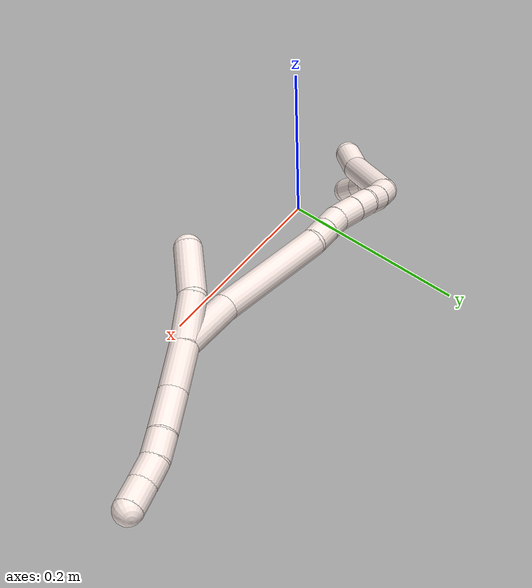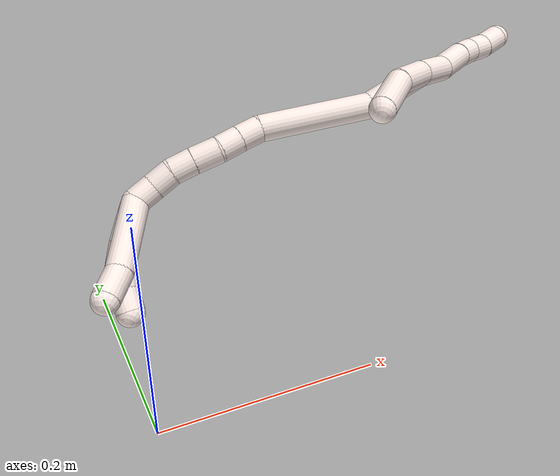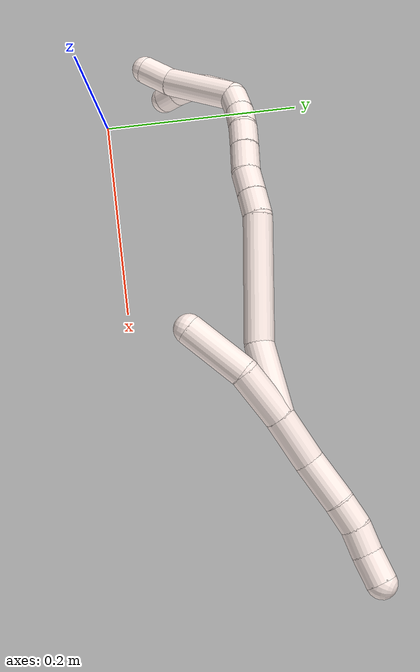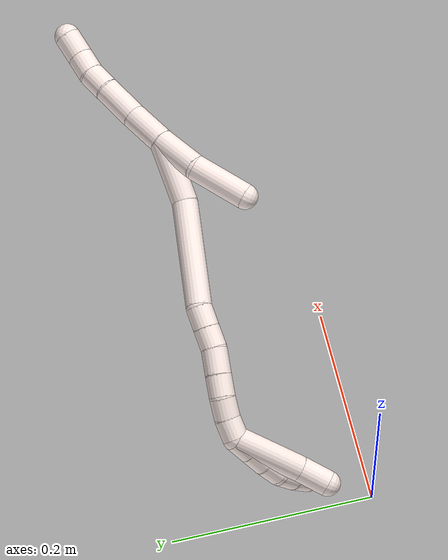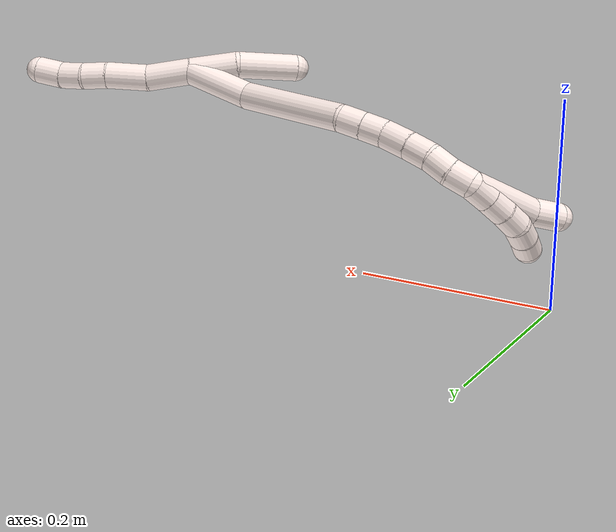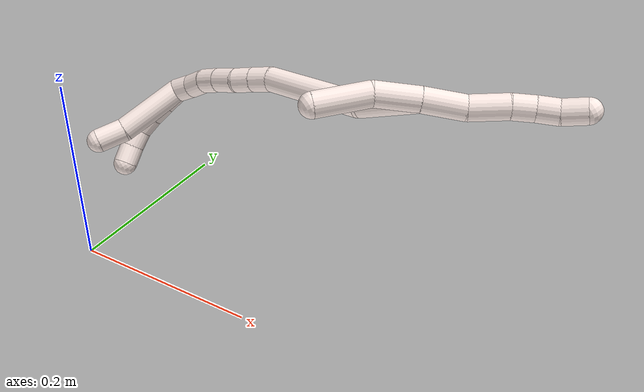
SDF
<sdf version="1.7">
 <world name="default">
  <model name="11">
   <static>0</static>
   <link name="11">
    <collision name="collision-cylinder-e_1_2_8">
     <pose>0.009247 0.010434 0.015759 -0.584821 0.454996 -0.13916</pose>
     <geometry><cylinder><radius>0.0125</radius><length>0.042081</length></cylinder></geometry>
     <surface>
      <friction><ode><mu>1.16</mu><mu2>1.16</mu2><slip1>0</slip1><slip2>0</slip2></ode></friction>
      <contact><ode><kp>1e+06</kp><kd>1</kd><max_vel>0</max_vel><min_depth>0.001</min_depth></ode></contact>
     </surface>
    </collision>
    <visual name="visual-cylinder-e_1_2_8">
     <pose>0.009247 0.010434 0.015759 -0.584821 0.454996 -0.13916</pose>
     <geometry><cylinder><radius>0.0125</radius><length>0.042081</length></cylinder></geometry>
     <material><ambient>1 0.933333 0.909804 1</ambient></material>
    </visual>
    <collision name="collision-cylinder-e_2_8_9">
     <pose>0.026944 0.026629 0.048039 -0.33557 0.449963 -0.077487</pose>
     <geometry><cylinder><radius>0.0125</radius><length>0.038861</length></cylinder></geometry>
     <surface>
      <friction><ode><mu>1.16</mu><mu2>1.16</mu2><slip1>0</slip1><slip2>0</slip2></ode></friction>
      <contact><ode><kp>1e+06</kp><kd>1</kd><max_vel>0</max_vel><min_depth>0.001</min_depth></ode></contact>
     </surface>
    </collision>
    <visual name="visual-cylinder-e_2_8_9">
     <pose>0.026944 0.026629 0.048039 -0.33557 0.449963 -0.077487</pose>
     <geometry><cylinder><radius>0.0125</radius><length>0.038861</length></cylinder></geometry>
     <material><ambient>1 0.933333 0.909804 1</ambient></material>
    </visual>
    <collision name="collision-cylinder-e_3_9_10">
     <pose>0.040659 0.036922 0.073581 -0.465379 0.480637 -0.116016</pose>
     <geometry><cylinder><radius>0.0125</radius><length>0.022772</length></cylinder></geometry>
     <surface>
      <friction><ode><mu>1.16</mu><mu2>1.16</mu2><slip1>0</slip1><slip2>0</slip2></ode></friction>
      <contact><ode><kp>1e+06</kp><kd>1</kd><max_vel>0</max_vel><min_depth>0.001</min_depth></ode></contact>
     </surface>
    </collision>
    <visual name="visual-cylinder-e_3_9_10">
     <pose>0.040659 0.036922 0.073581 -0.465379 0.480637 -0.116016</pose>
     <geometry><cylinder><radius>0.0125</radius><length>0.022772</length></cylinder></geometry>
     <material><ambient>1 0.933333 0.909804 1</ambient></material>
    </visual>
    <collision name="collision-cylinder-e_4_10_11">
     <pose>0.052807 0.04509 0.090317 -0.440652 0.679062 -0.157882</pose>
     <geometry><cylinder><radius>0.0125</radius><length>0.021918</length></cylinder></geometry>
     <surface>
      <friction><ode><mu>1.16</mu><mu2>1.16</mu2><slip1>0</slip1><slip2>0</slip2></ode></friction>
      <contact><ode><kp>1e+06</kp><kd>1</kd><max_vel>0</max_vel><min_depth>0.001</min_depth></ode></contact>
     </surface>
    </collision>
    <visual name="visual-cylinder-e_4_10_11">
     <pose>0.052807 0.04509 0.090317 -0.440652 0.679062 -0.157882</pose>
     <geometry><cylinder><radius>0.0125</radius><length>0.021918</length></cylinder></geometry>
     <material><ambient>1 0.933333 0.909804 1</ambient></material>
    </visual>
    <collision name="collision-cylinder-e_5_11_6">
     <pose>0.067023 0.050729 0.107552 -0.207194 0.645846 -0.069556</pose>
     <geometry><cylinder><radius>0.0125</radius><length>0.024367</length></cylinder></geometry>
     <surface>
      <friction><ode><mu>1.16</mu><mu2>1.16</mu2><slip1>0</slip1><slip2>0</slip2></ode></friction>
      <contact><ode><kp>1e+06</kp><kd>1</kd><max_vel>0</max_vel><min_depth>0.001</min_depth></ode></contact>
     </surface>
    </collision>
    <visual name="visual-cylinder-e_5_11_6">
     <pose>0.067023 0.050729 0.107552 -0.207194 0.645846 -0.069556</pose>
     <geometry><cylinder><radius>0.0125</radius><length>0.024367</length></cylinder></geometry>
     <material><ambient>1 0.933333 0.909804 1</ambient></material>
    </visual>
    <collision name="collision-cylinder-e_1_2_12">
     <pose>-0.00829 -0.010523 -0.017654 2.60408 -0.383376 -1.22766</pose>
     <geometry><cylinder><radius>0.0125</radius><length>0.044323</length></cylinder></geometry>
     <surface>
      <friction><ode><mu>1.16</mu><mu2>1.16</mu2><slip1>0</slip1><slip2>0</slip2></ode></friction>
      <contact><ode><kp>1e+06</kp><kd>1</kd><max_vel>0</max_vel><min_depth>0.001</min_depth></ode></contact>
     </surface>
    </collision>
    <visual name="visual-cylinder-e_1_2_12">
     <pose>-0.00829 -0.010523 -0.017654 2.60408 -0.383376 -1.22766</pose>
     <geometry><cylinder><radius>0.0125</radius><length>0.044323</length></cylinder></geometry>
     <material><ambient>1 0.933333 0.909804 1</ambient></material>
    </visual>
    <collision name="collision-cylinder-e_2_12_5">
     <pose>-0.02175 -0.028715 -0.061566 2.85742 -0.186831 -1.15968</pose>
     <geometry><cylinder><radius>0.0125</radius><length>0.055677</length></cylinder></geometry>
     <surface>
      <friction><ode><mu>1.16</mu><mu2>1.16</mu2><slip1>0</slip1><slip2>0</slip2></ode></friction>
      <contact><ode><kp>1e+06</kp><kd>1</kd><max_vel>0</max_vel><min_depth>0.001</min_depth></ode></contact>
     </surface>
    </collision>
    <visual name="visual-cylinder-e_2_12_5">
     <pose>-0.02175 -0.028715 -0.061566 2.85742 -0.186831 -1.15968</pose>
     <geometry><cylinder><radius>0.0125</radius><length>0.055677</length></cylinder></geometry>
     <material><ambient>1 0.933333 0.909804 1</ambient></material>
    </visual>
    <collision name="collision-cylinder-e_1_2_13">
     <pose>-0.022886 -7.9e-05 -0.021314 3.13788 -0.820952 -3.13306</pose>
     <geometry><cylinder><radius>0.0125</radius><length>0.062549</length></cylinder></geometry>
     <surface>
      <friction><ode><mu>1.16</mu><mu2>1.16</mu2><slip1>0</slip1><slip2>0</slip2></ode></friction>
      <contact><ode><kp>1e+06</kp><kd>1</kd><max_vel>0</max_vel><min_depth>0.001</min_depth></ode></contact>
     </surface>
    </collision>
    <visual name="visual-cylinder-e_1_2_13">
     <pose>-0.022886 -7.9e-05 -0.021314 3.13788 -0.820952 -3.13306</pose>
     <geometry><cylinder><radius>0.0125</radius><length>0.062549</length></cylinder></geometry>
     <material><ambient>1 0.933333 0.909804 1</ambient></material>
    </visual>
    <collision name="collision-cylinder-e_2_13_14">
     <pose>-0.093318 -0.009942 -0.066225 2.74853 -1.07778 -2.4987</pose>
     <geometry><cylinder><radius>0.0125</radius><length>0.107945</length></cylinder></geometry>
     <surface>
      <friction><ode><mu>1.16</mu><mu2>1.16</mu2><slip1>0</slip1><slip2>0</slip2></ode></friction>
      <contact><ode><kp>1e+06</kp><kd>1</kd><max_vel>0</max_vel><min_depth>0.001</min_depth></ode></contact>
     </surface>
    </collision>
    <visual name="visual-cylinder-e_2_13_14">
     <pose>-0.093318 -0.009942 -0.066225 2.74853 -1.07778 -2.4987</pose>
     <geometry><cylinder><radius>0.0125</radius><length>0.107945</length></cylinder></geometry>
     <material><ambient>1 0.933333 0.909804 1</ambient></material>
    </visual>
    <collision name="collision-cylinder-e_3_14_15">
     <pose>-0.148953 -0.020488 -0.096843 3.03351 -0.853143 -2.90465</pose>
     <geometry><cylinder><radius>0.0125</radius><length>0.021478</length></cylinder></geometry>
     <surface>
      <friction><ode><mu>1.16</mu><mu2>1.16</mu2><slip1>0</slip1><slip2>0</slip2></ode></friction>
      <contact><ode><kp>1e+06</kp><kd>1</kd><max_vel>0</max_vel><min_depth>0.001</min_depth></ode></contact>
     </surface>
    </collision>
    <visual name="visual-cylinder-e_3_14_15">
     <pose>-0.148953 -0.020488 -0.096843 3.03351 -0.853143 -2.90465</pose>
     <geometry><cylinder><radius>0.0125</radius><length>0.021478</length></cylinder></geometry>
     <material><ambient>1 0.933333 0.909804 1</ambient></material>
    </visual>
    <collision name="collision-cylinder-e_4_15_16">
     <pose>-0.164718 -0.021816 -0.110736 3.05948 -0.838742 -2.95782</pose>
     <geometry><cylinder><radius>0.0125</radius><length>0.020634</length></cylinder></geometry>
     <surface>
      <friction><ode><mu>1.16</mu><mu2>1.16</mu2><slip1>0</slip1><slip2>0</slip2></ode></friction>
      <contact><ode><kp>1e+06</kp><kd>1</kd><max_vel>0</max_vel><min_depth>0.001</min_depth></ode></contact>
     </surface>
    </collision>
    <visual name="visual-cylinder-e_4_15_16">
     <pose>-0.164718 -0.021816 -0.110736 3.05948 -0.838742 -2.95782</pose>
     <geometry><cylinder><radius>0.0125</radius><length>0.020634</length></cylinder></geometry>
     <material><ambient>1 0.933333 0.909804 1</ambient></material>
    </visual>
    <collision name="collision-cylinder-e_5_16_17">
     <pose>-0.183097 -0.022207 -0.124159 -3.11498 -1.02157 3.0941</pose>
     <geometry><cylinder><radius>0.0125</radius><length>0.025103</length></cylinder></geometry>
     <surface>
      <friction><ode><mu>1.16</mu><mu2>1.16</mu2><slip1>0</slip1><slip2>0</slip2></ode></friction>
      <contact><ode><kp>1e+06</kp><kd>1</kd><max_vel>0</max_vel><min_depth>0.001</min_depth></ode></contact>
     </surface>
    </collision>
    <visual name="visual-cylinder-e_5_16_17">
     <pose>-0.183097 -0.022207 -0.124159 -3.11498 -1.02157 3.0941</pose>
     <geometry><cylinder><radius>0.0125</radius><length>0.025103</length></cylinder></geometry>
     <material><ambient>1 0.933333 0.909804 1</ambient></material>
    </visual>
    <collision name="collision-cylinder-e_6_17_18">
     <pose>-0.202741 -0.021399 -0.136582 -3.03401 -0.986747 2.942</pose>
     <geometry><cylinder><radius>0.0125</radius><length>0.021427</length></cylinder></geometry>
     <surface>
      <friction><ode><mu>1.16</mu><mu2>1.16</mu2><slip1>0</slip1><slip2>0</slip2></ode></friction>
      <contact><ode><kp>1e+06</kp><kd>1</kd><max_vel>0</max_vel><min_depth>0.001</min_depth></ode></contact>
     </surface>
    </collision>
    <visual name="visual-cylinder-e_6_17_18">
     <pose>-0.202741 -0.021399 -0.136582 -3.03401 -0.986747 2.942</pose>
     <geometry><cylinder><radius>0.0125</radius><length>0.021427</length></cylinder></geometry>
     <material><ambient>1 0.933333 0.909804 1</ambient></material>
    </visual>
    <collision name="collision-cylinder-e_7_18_19">
     <pose>-0.219264 -0.018351 -0.148931 -2.78493 -0.831977 2.36681</pose>
     <geometry><cylinder><radius>0.0125</radius><length>0.020524</length></cylinder></geometry>
     <surface>
      <friction><ode><mu>1.16</mu><mu2>1.16</mu2><slip1>0</slip1><slip2>0</slip2></ode></friction>
      <contact><ode><kp>1e+06</kp><kd>1</kd><max_vel>0</max_vel><min_depth>0.001</min_depth></ode></contact>
     </surface>
    </collision>
    <visual name="visual-cylinder-e_7_18_19">
     <pose>-0.219264 -0.018351 -0.148931 -2.78493 -0.831977 2.36681</pose>
     <geometry><cylinder><radius>0.0125</radius><length>0.020524</length></cylinder></geometry>
     <material><ambient>1 0.933333 0.909804 1</ambient></material>
    </visual>
    <collision name="collision-cylinder-e_8_19_1">
     <pose>-0.233643 -0.014669 -0.162868 -2.973 -0.731361 2.70721</pose>
     <geometry><cylinder><radius>0.0125</radius><length>0.020339</length></cylinder></geometry>
     <surface>
      <friction><ode><mu>1.16</mu><mu2>1.16</mu2><slip1>0</slip1><slip2>0</slip2></ode></friction>
      <contact><ode><kp>1e+06</kp><kd>1</kd><max_vel>0</max_vel><min_depth>0.001</min_depth></ode></contact>
     </surface>
    </collision>
    <visual name="visual-cylinder-e_8_19_1">
     <pose>-0.233643 -0.014669 -0.162868 -2.973 -0.731361 2.70721</pose>
     <geometry><cylinder><radius>0.0125</radius><length>0.020339</length></cylinder></geometry>
     <material><ambient>1 0.933333 0.909804 1</ambient></material>
    </visual>
    <collision name="collision-cylinder-e_1_1_20">
     <pose>-0.241893 -0.010156 -0.179677 -2.80768 -0.146347 0.820584</pose>
     <geometry><cylinder><radius>0.0125</radius><length>0.02</length></cylinder></geometry>
     <surface>
      <friction><ode><mu>1.16</mu><mu2>1.16</mu2><slip1>0</slip1><slip2>0</slip2></ode></friction>
      <contact><ode><kp>1e+06</kp><kd>1</kd><max_vel>0</max_vel><min_depth>0.001</min_depth></ode></contact>
     </surface>
    </collision>
    <visual name="visual-cylinder-e_1_1_20">
     <pose>-0.241893 -0.010156 -0.179677 -2.80768 -0.146347 0.820584</pose>
     <geometry><cylinder><radius>0.0125</radius><length>0.02</length></cylinder></geometry>
     <material><ambient>1 0.933333 0.909804 1</ambient></material>
    </visual>
    <collision name="collision-cylinder-e_2_20_21">
     <pose>-0.24466 -0.003415 -0.198299 -2.78087 -0.13123 0.691749</pose>
     <geometry><cylinder><radius>0.0125</radius><length>0.02</length></cylinder></geometry>
     <surface>
      <friction><ode><mu>1.16</mu><mu2>1.16</mu2><slip1>0</slip1><slip2>0</slip2></ode></friction>
      <contact><ode><kp>1e+06</kp><kd>1</kd><max_vel>0</max_vel><min_depth>0.001</min_depth></ode></contact>
     </surface>
    </collision>
    <visual name="visual-cylinder-e_2_20_21">
     <pose>-0.24466 -0.003415 -0.198299 -2.78087 -0.13123 0.691749</pose>
     <geometry><cylinder><radius>0.0125</radius><length>0.02</length></cylinder></geometry>
     <material><ambient>1 0.933333 0.909804 1</ambient></material>
    </visual>
    <collision name="collision-cylinder-e_3_21_22">
     <pose>-0.246365 0.003974 -0.216779 -2.74171 -0.039669 0.195159</pose>
     <geometry><cylinder><radius>0.0125</radius><length>0.02</length></cylinder></geometry>
     <surface>
      <friction><ode><mu>1.16</mu><mu2>1.16</mu2><slip1>0</slip1><slip2>0</slip2></ode></friction>
      <contact><ode><kp>1e+06</kp><kd>1</kd><max_vel>0</max_vel><min_depth>0.001</min_depth></ode></contact>
     </surface>
    </collision>
    <visual name="visual-cylinder-e_3_21_22">
     <pose>-0.246365 0.003974 -0.216779 -2.74171 -0.039669 0.195159</pose>
     <geometry><cylinder><radius>0.0125</radius><length>0.02</length></cylinder></geometry>
     <material><ambient>1 0.933333 0.909804 1</ambient></material>
    </visual>
    <collision name="collision-cylinder-e_4_22_23">
     <pose>-0.244343 0.012971 -0.234233 -2.58737 0.244311 -0.814936</pose>
     <geometry><cylinder><radius>0.0125</radius><length>0.02</length></cylinder></geometry>
     <surface>
      <friction><ode><mu>1.16</mu><mu2>1.16</mu2><slip1>0</slip1><slip2>0</slip2></ode></friction>
      <contact><ode><kp>1e+06</kp><kd>1</kd><max_vel>0</max_vel><min_depth>0.001</min_depth></ode></contact>
     </surface>
    </collision>
    <visual name="visual-cylinder-e_4_22_23">
     <pose>-0.244343 0.012971 -0.234233 -2.58737 0.244311 -0.814936</pose>
     <geometry><cylinder><radius>0.0125</radius><length>0.02</length></cylinder></geometry>
     <material><ambient>1 0.933333 0.909804 1</ambient></material>
    </visual>
    <collision name="collision-cylinder-e_5_23_4">
     <pose>-0.238319 0.023177 -0.250294 -2.56312 0.368723 -1.11957</pose>
     <geometry><cylinder><radius>0.0125</radius><length>0.02</length></cylinder></geometry>
     <surface>
      <friction><ode><mu>1.16</mu><mu2>1.16</mu2><slip1>0</slip1><slip2>0</slip2></ode></friction>
      <contact><ode><kp>1e+06</kp><kd>1</kd><max_vel>0</max_vel><min_depth>0.001</min_depth></ode></contact>
     </surface>
    </collision>
    <visual name="visual-cylinder-e_5_23_4">
     <pose>-0.238319 0.023177 -0.250294 -2.56312 0.368723 -1.11957</pose>
     <geometry><cylinder><radius>0.0125</radius><length>0.02</length></cylinder></geometry>
     <material><ambient>1 0.933333 0.909804 1</ambient></material>
    </visual>
    <collision name="collision-cylinder-e_1_1_24">
     <pose>-0.239402 -0.009224 -0.205309 -3.02282 0.029308 -0.48331</pose>
     <geometry><cylinder><radius>0.0125</radius><length>0.070486</length></cylinder></geometry>
     <surface>
      <friction><ode><mu>1.16</mu><mu2>1.16</mu2><slip1>0</slip1><slip2>0</slip2></ode></friction>
      <contact><ode><kp>1e+06</kp><kd>1</kd><max_vel>0</max_vel><min_depth>0.001</min_depth></ode></contact>
     </surface>
    </collision>
    <visual name="visual-cylinder-e_1_1_24">
     <pose>-0.239402 -0.009224 -0.205309 -3.02282 0.029308 -0.48331</pose>
     <geometry><cylinder><radius>0.0125</radius><length>0.070486</length></cylinder></geometry>
     <material><ambient>1 0.933333 0.909804 1</ambient></material>
    </visual>
    <collision name="collision-cylinder-e_2_24_3">
     <pose>-0.239509 -0.006299 -0.254949 3.05659 -0.077308 -1.47599</pose>
     <geometry><cylinder><radius>0.0125</radius><length>0.029514</length></cylinder></geometry>
     <surface>
      <friction><ode><mu>1.16</mu><mu2>1.16</mu2><slip1>0</slip1><slip2>0</slip2></ode></friction>
      <contact><ode><kp>1e+06</kp><kd>1</kd><max_vel>0</max_vel><min_depth>0.001</min_depth></ode></contact>
     </surface>
    </collision>
    <visual name="visual-cylinder-e_2_24_3">
     <pose>-0.239509 -0.006299 -0.254949 3.05659 -0.077308 -1.47599</pose>
     <geometry><cylinder><radius>0.0125</radius><length>0.029514</length></cylinder></geometry>
     <material><ambient>1 0.933333 0.909804 1</ambient></material>
    </visual>
    <collision name="collision-sphere-3">
     <pose>-0.240649 -0.007548 -0.269609 0 -0 0</pose>
     <geometry><sphere><radius>0.0125</radius></sphere></geometry>
     <surface>
      <friction><ode><mu>1.16</mu><mu2>1.16</mu2><slip1>0</slip1><slip2>0</slip2></ode></friction>
      <contact><ode><kp>1e+06</kp><kd>1</kd><max_vel>0</max_vel><min_depth>0.001</min_depth></ode></contact>
     </surface>
    </collision>
    <visual name="visual-sphere-3">
     <pose>-0.240649 -0.007548 -0.269609 0 -0 0</pose>
     <geometry><sphere><radius>0.0125</radius></sphere></geometry>
     <material><ambient>1 0.933333 0.909804 1</ambient></material>
    </visual>
    <collision name="collision-sphere-24">
     <pose>-0.238369 -0.00505 -0.240289 0 -0 0</pose>
     <geometry><sphere><radius>0.0125</radius></sphere></geometry>
     <surface>
      <friction><ode><mu>1.16</mu><mu2>1.16</mu2><slip1>0</slip1><slip2>0</slip2></ode></friction>
      <contact><ode><kp>1e+06</kp><kd>1</kd><max_vel>0</max_vel><min_depth>0.001</min_depth></ode></contact>
     </surface>
    </collision>
    <visual name="visual-sphere-24">
     <pose>-0.238369 -0.00505 -0.240289 0 -0 0</pose>
     <geometry><sphere><radius>0.0125</radius></sphere></geometry>
     <material><ambient>1 0.933333 0.909804 1</ambient></material>
    </visual>
    <collision name="collision-sphere-4">
     <pose>-0.234715 0.028277 -0.258104 0 -0 0</pose>
     <geometry><sphere><radius>0.0125</radius></sphere></geometry>
     <surface>
      <friction><ode><mu>1.16</mu><mu2>1.16</mu2><slip1>0</slip1><slip2>0</slip2></ode></friction>
      <contact><ode><kp>1e+06</kp><kd>1</kd><max_vel>0</max_vel><min_depth>0.001</min_depth></ode></contact>
     </surface>
    </collision>
    <visual name="visual-sphere-4">
     <pose>-0.234715 0.028277 -0.258104 0 -0 0</pose>
     <geometry><sphere><radius>0.0125</radius></sphere></geometry>
     <material><ambient>1 0.933333 0.909804 1</ambient></material>
    </visual>
    <collision name="collision-sphere-23">
     <pose>-0.241924 0.018077 -0.242484 0 -0 0</pose>
     <geometry><sphere><radius>0.0125</radius></sphere></geometry>
     <surface>
      <friction><ode><mu>1.16</mu><mu2>1.16</mu2><slip1>0</slip1><slip2>0</slip2></ode></friction>
      <contact><ode><kp>1e+06</kp><kd>1</kd><max_vel>0</max_vel><min_depth>0.001</min_depth></ode></contact>
     </surface>
    </collision>
    <visual name="visual-sphere-23">
     <pose>-0.241924 0.018077 -0.242484 0 -0 0</pose>
     <geometry><sphere><radius>0.0125</radius></sphere></geometry>
     <material><ambient>1 0.933333 0.909804 1</ambient></material>
    </visual>
    <collision name="collision-sphere-22">
     <pose>-0.246761 0.007864 -0.225983 0 -0 0</pose>
     <geometry><sphere><radius>0.0125</radius></sphere></geometry>
     <surface>
      <friction><ode><mu>1.16</mu><mu2>1.16</mu2><slip1>0</slip1><slip2>0</slip2></ode></friction>
      <contact><ode><kp>1e+06</kp><kd>1</kd><max_vel>0</max_vel><min_depth>0.001</min_depth></ode></contact>
     </surface>
    </collision>
    <visual name="visual-sphere-22">
     <pose>-0.246761 0.007864 -0.225983 0 -0 0</pose>
     <geometry><sphere><radius>0.0125</radius></sphere></geometry>
     <material><ambient>1 0.933333 0.909804 1</ambient></material>
    </visual>
    <collision name="collision-sphere-21">
     <pose>-0.245968 8.4e-05 -0.207575 0 -0 0</pose>
     <geometry><sphere><radius>0.0125</radius></sphere></geometry>
     <surface>
      <friction><ode><mu>1.16</mu><mu2>1.16</mu2><slip1>0</slip1><slip2>0</slip2></ode></friction>
      <contact><ode><kp>1e+06</kp><kd>1</kd><max_vel>0</max_vel><min_depth>0.001</min_depth></ode></contact>
     </surface>
    </collision>
    <visual name="visual-sphere-21">
     <pose>-0.245968 8.4e-05 -0.207575 0 -0 0</pose>
     <geometry><sphere><radius>0.0125</radius></sphere></geometry>
     <material><ambient>1 0.933333 0.909804 1</ambient></material>
    </visual>
    <collision name="collision-sphere-20">
     <pose>-0.243351 -0.006914 -0.189023 0 -0 0</pose>
     <geometry><sphere><radius>0.0125</radius></sphere></geometry>
     <surface>
      <friction><ode><mu>1.16</mu><mu2>1.16</mu2><slip1>0</slip1><slip2>0</slip2></ode></friction>
      <contact><ode><kp>1e+06</kp><kd>1</kd><max_vel>0</max_vel><min_depth>0.001</min_depth></ode></contact>
     </surface>
    </collision>
    <visual name="visual-sphere-20">
     <pose>-0.243351 -0.006914 -0.189023 0 -0 0</pose>
     <geometry><sphere><radius>0.0125</radius></sphere></geometry>
     <material><ambient>1 0.933333 0.909804 1</ambient></material>
    </visual>
    <collision name="collision-sphere-6">
     <pose>0.074356 0.05273 0.117074 0 -0 0</pose>
     <geometry><sphere><radius>0.0125</radius></sphere></geometry>
     <surface>
      <friction><ode><mu>1.16</mu><mu2>1.16</mu2><slip1>0</slip1><slip2>0</slip2></ode></friction>
      <contact><ode><kp>1e+06</kp><kd>1</kd><max_vel>0</max_vel><min_depth>0.001</min_depth></ode></contact>
     </surface>
    </collision>
    <visual name="visual-sphere-6">
     <pose>0.074356 0.05273 0.117074 0 -0 0</pose>
     <geometry><sphere><radius>0.0125</radius></sphere></geometry>
     <material><ambient>1 0.933333 0.909804 1</ambient></material>
    </visual>
    <collision name="collision-sphere-11">
     <pose>0.059689 0.048727 0.09803 0 -0 0</pose>
     <geometry><sphere><radius>0.0125</radius></sphere></geometry>
     <surface>
      <friction><ode><mu>1.16</mu><mu2>1.16</mu2><slip1>0</slip1><slip2>0</slip2></ode></friction>
      <contact><ode><kp>1e+06</kp><kd>1</kd><max_vel>0</max_vel><min_depth>0.001</min_depth></ode></contact>
     </surface>
    </collision>
    <visual name="visual-sphere-11">
     <pose>0.059689 0.048727 0.09803 0 -0 0</pose>
     <geometry><sphere><radius>0.0125</radius></sphere></geometry>
     <material><ambient>1 0.933333 0.909804 1</ambient></material>
    </visual>
    <collision name="collision-sphere-10">
     <pose>0.045924 0.041452 0.082604 0 -0 0</pose>
     <geometry><sphere><radius>0.0125</radius></sphere></geometry>
     <surface>
      <friction><ode><mu>1.16</mu><mu2>1.16</mu2><slip1>0</slip1><slip2>0</slip2></ode></friction>
      <contact><ode><kp>1e+06</kp><kd>1</kd><max_vel>0</max_vel><min_depth>0.001</min_depth></ode></contact>
     </surface>
    </collision>
    <visual name="visual-sphere-10">
     <pose>0.045924 0.041452 0.082604 0 -0 0</pose>
     <geometry><sphere><radius>0.0125</radius></sphere></geometry>
     <material><ambient>1 0.933333 0.909804 1</ambient></material>
    </visual>
    <collision name="collision-sphere-9">
     <pose>0.035395 0.032391 0.064559 0 -0 0</pose>
     <geometry><sphere><radius>0.0125</radius></sphere></geometry>
     <surface>
      <friction><ode><mu>1.16</mu><mu2>1.16</mu2><slip1>0</slip1><slip2>0</slip2></ode></friction>
      <contact><ode><kp>1e+06</kp><kd>1</kd><max_vel>0</max_vel><min_depth>0.001</min_depth></ode></contact>
     </surface>
    </collision>
    <visual name="visual-sphere-9">
     <pose>0.035395 0.032391 0.064559 0 -0 0</pose>
     <geometry><sphere><radius>0.0125</radius></sphere></geometry>
     <material><ambient>1 0.933333 0.909804 1</ambient></material>
    </visual>
    <collision name="collision-sphere-2">
     <geometry><sphere><radius>0.0125</radius></sphere></geometry>
     <surface>
      <friction><ode><mu>1.16</mu><mu2>1.16</mu2><slip1>0</slip1><slip2>0</slip2></ode></friction>
      <contact><ode><kp>1e+06</kp><kd>1</kd><max_vel>0</max_vel><min_depth>0.001</min_depth></ode></contact>
     </surface>
    </collision>
    <visual name="visual-sphere-2">
     <geometry><sphere><radius>0.0125</radius></sphere></geometry>
     <material><ambient>1 0.933333 0.909804 1</ambient></material>
    </visual>
    <collision name="collision-sphere-19">
     <pose>-0.226851 -0.015939 -0.155407 0 -0 0</pose>
     <geometry><sphere><radius>0.0125</radius></sphere></geometry>
     <surface>
      <friction><ode><mu>1.16</mu><mu2>1.16</mu2><slip1>0</slip1><slip2>0</slip2></ode></friction>
      <contact><ode><kp>1e+06</kp><kd>1</kd><max_vel>0</max_vel><min_depth>0.001</min_depth></ode></contact>
     </surface>
    </collision>
    <visual name="visual-sphere-19">
     <pose>-0.226851 -0.015939 -0.155407 0 -0 0</pose>
     <geometry><sphere><radius>0.0125</radius></sphere></geometry>
     <material><ambient>1 0.933333 0.909804 1</ambient></material>
    </visual>
    <collision name="collision-sphere-8">
     <pose>0.018493 0.020868 0.031518 0 -0 0</pose>
     <geometry><sphere><radius>0.0125</radius></sphere></geometry>
     <surface>
      <friction><ode><mu>1.16</mu><mu2>1.16</mu2><slip1>0</slip1><slip2>0</slip2></ode></friction>
      <contact><ode><kp>1e+06</kp><kd>1</kd><max_vel>0</max_vel><min_depth>0.001</min_depth></ode></contact>
     </surface>
    </collision>
    <visual name="visual-sphere-8">
     <pose>0.018493 0.020868 0.031518 0 -0 0</pose>
     <geometry><sphere><radius>0.0125</radius></sphere></geometry>
     <material><ambient>1 0.933333 0.909804 1</ambient></material>
    </visual>
    <collision name="collision-sphere-12">
     <pose>-0.016579 -0.021046 -0.035309 0 -0 0</pose>
     <geometry><sphere><radius>0.0125</radius></sphere></geometry>
     <surface>
      <friction><ode><mu>1.16</mu><mu2>1.16</mu2><slip1>0</slip1><slip2>0</slip2></ode></friction>
      <contact><ode><kp>1e+06</kp><kd>1</kd><max_vel>0</max_vel><min_depth>0.001</min_depth></ode></contact>
     </surface>
    </collision>
    <visual name="visual-sphere-12">
     <pose>-0.016579 -0.021046 -0.035309 0 -0 0</pose>
     <geometry><sphere><radius>0.0125</radius></sphere></geometry>
     <material><ambient>1 0.933333 0.909804 1</ambient></material>
    </visual>
    <collision name="collision-sphere-5">
     <pose>-0.026921 -0.036384 -0.087823 0 -0 0</pose>
     <geometry><sphere><radius>0.0125</radius></sphere></geometry>
     <surface>
      <friction><ode><mu>1.16</mu><mu2>1.16</mu2><slip1>0</slip1><slip2>0</slip2></ode></friction>
      <contact><ode><kp>1e+06</kp><kd>1</kd><max_vel>0</max_vel><min_depth>0.001</min_depth></ode></contact>
     </surface>
    </collision>
    <visual name="visual-sphere-5">
     <pose>-0.026921 -0.036384 -0.087823 0 -0 0</pose>
     <geometry><sphere><radius>0.0125</radius></sphere></geometry>
     <material><ambient>1 0.933333 0.909804 1</ambient></material>
    </visual>
    <collision name="collision-sphere-13">
     <pose>-0.045773 -0.000158 -0.042628 0 -0 0</pose>
     <geometry><sphere><radius>0.0125</radius></sphere></geometry>
     <surface>
      <friction><ode><mu>1.16</mu><mu2>1.16</mu2><slip1>0</slip1><slip2>0</slip2></ode></friction>
      <contact><ode><kp>1e+06</kp><kd>1</kd><max_vel>0</max_vel><min_depth>0.001</min_depth></ode></contact>
     </surface>
    </collision>
    <visual name="visual-sphere-13">
     <pose>-0.045773 -0.000158 -0.042628 0 -0 0</pose>
     <geometry><sphere><radius>0.0125</radius></sphere></geometry>
     <material><ambient>1 0.933333 0.909804 1</ambient></material>
    </visual>
    <collision name="collision-sphere-14">
     <pose>-0.140863 -0.019727 -0.089821 0 -0 0</pose>
     <geometry><sphere><radius>0.0125</radius></sphere></geometry>
     <surface>
      <friction><ode><mu>1.16</mu><mu2>1.16</mu2><slip1>0</slip1><slip2>0</slip2></ode></friction>
      <contact><ode><kp>1e+06</kp><kd>1</kd><max_vel>0</max_vel><min_depth>0.001</min_depth></ode></contact>
     </surface>
    </collision>
    <visual name="visual-sphere-14">
     <pose>-0.140863 -0.019727 -0.089821 0 -0 0</pose>
     <geometry><sphere><radius>0.0125</radius></sphere></geometry>
     <material><ambient>1 0.933333 0.909804 1</ambient></material>
    </visual>
    <collision name="collision-sphere-15">
     <pose>-0.157044 -0.02125 -0.103864 0 -0 0</pose>
     <geometry><sphere><radius>0.0125</radius></sphere></geometry>
     <surface>
      <friction><ode><mu>1.16</mu><mu2>1.16</mu2><slip1>0</slip1><slip2>0</slip2></ode></friction>
      <contact><ode><kp>1e+06</kp><kd>1</kd><max_vel>0</max_vel><min_depth>0.001</min_depth></ode></contact>
     </surface>
    </collision>
    <visual name="visual-sphere-15">
     <pose>-0.157044 -0.02125 -0.103864 0 -0 0</pose>
     <geometry><sphere><radius>0.0125</radius></sphere></geometry>
     <material><ambient>1 0.933333 0.909804 1</ambient></material>
    </visual>
    <collision name="collision-sphere-16">
     <pose>-0.172392 -0.022382 -0.117609 0 -0 0</pose>
     <geometry><sphere><radius>0.0125</radius></sphere></geometry>
     <surface>
      <friction><ode><mu>1.16</mu><mu2>1.16</mu2><slip1>0</slip1><slip2>0</slip2></ode></friction>
      <contact><ode><kp>1e+06</kp><kd>1</kd><max_vel>0</max_vel><min_depth>0.001</min_depth></ode></contact>
     </surface>
    </collision>
    <visual name="visual-sphere-16">
     <pose>-0.172392 -0.022382 -0.117609 0 -0 0</pose>
     <geometry><sphere><radius>0.0125</radius></sphere></geometry>
     <material><ambient>1 0.933333 0.909804 1</ambient></material>
    </visual>
    <collision name="collision-sphere-17">
     <pose>-0.193803 -0.022033 -0.130709 0 -0 0</pose>
     <geometry><sphere><radius>0.0125</radius></sphere></geometry>
     <surface>
      <friction><ode><mu>1.16</mu><mu2>1.16</mu2><slip1>0</slip1><slip2>0</slip2></ode></friction>
      <contact><ode><kp>1e+06</kp><kd>1</kd><max_vel>0</max_vel><min_depth>0.001</min_depth></ode></contact>
     </surface>
    </collision>
    <visual name="visual-sphere-17">
     <pose>-0.193803 -0.022033 -0.130709 0 -0 0</pose>
     <geometry><sphere><radius>0.0125</radius></sphere></geometry>
     <material><ambient>1 0.933333 0.909804 1</ambient></material>
    </visual>
    <collision name="collision-sphere-18">
     <pose>-0.211678 -0.020764 -0.142456 0 -0 0</pose>
     <geometry><sphere><radius>0.0125</radius></sphere></geometry>
     <surface>
      <friction><ode><mu>1.16</mu><mu2>1.16</mu2><slip1>0</slip1><slip2>0</slip2></ode></friction>
      <contact><ode><kp>1e+06</kp><kd>1</kd><max_vel>0</max_vel><min_depth>0.001</min_depth></ode></contact>
     </surface>
    </collision>
    <visual name="visual-sphere-18">
     <pose>-0.211678 -0.020764 -0.142456 0 -0 0</pose>
     <geometry><sphere><radius>0.0125</radius></sphere></geometry>
     <material><ambient>1 0.933333 0.909804 1</ambient></material>
    </visual>
    <collision name="collision-sphere-1">
     <pose>-0.240435 -0.013399 -0.17033 0 -0 0</pose>
     <geometry><sphere><radius>0.0125</radius></sphere></geometry>
     <surface>
      <friction><ode><mu>1.16</mu><mu2>1.16</mu2><slip1>0</slip1><slip2>0</slip2></ode></friction>
      <contact><ode><kp>1e+06</kp><kd>1</kd><max_vel>0</max_vel><min_depth>0.001</min_depth></ode></contact>
     </surface>
    </collision>
    <visual name="visual-sphere-1">
     <pose>-0.240435 -0.013399 -0.17033 0 -0 0</pose>
     <geometry><sphere><radius>0.0125</radius></sphere></geometry>
     <material><ambient>1 0.933333 0.909804 1</ambient></material>
    </visual>
    <inertial>
     <pose>-0.107968 -0.001987 -0.085661 0 -0 0</pose>
     <mass>0.75</mass>
     <inertia><ixx>-9e-05</ixx><ixy>0</ixy><ixz>0</ixz><iyy>4.6e-05</iyy><iyz>0</iyz><izz>0.000105</izz></inertia>
    </inertial>
   </link>
   <pose>0.316736 0.131981 0.216898 -1.22719 -0.113692 -0.607438</pose>
  </model>
 </world>
</sdf>
